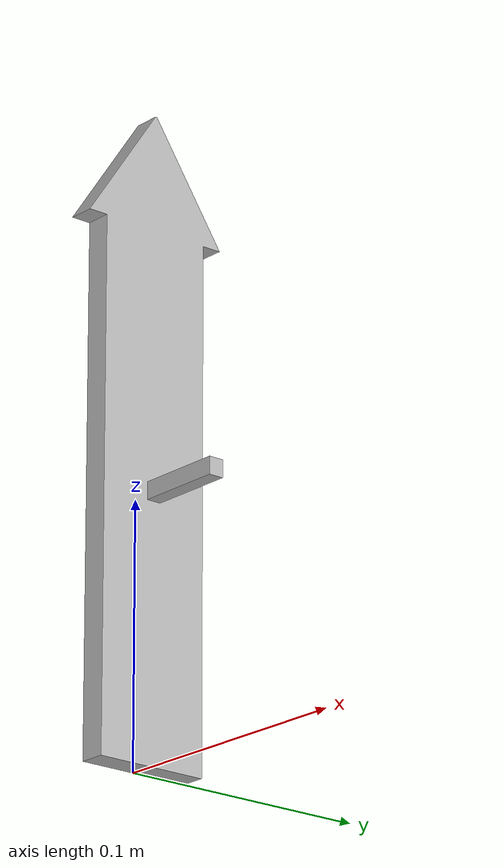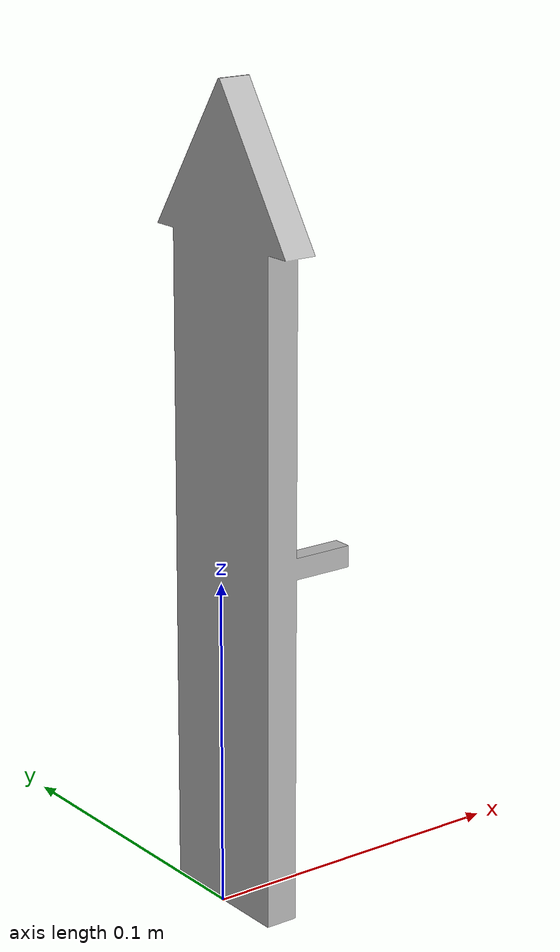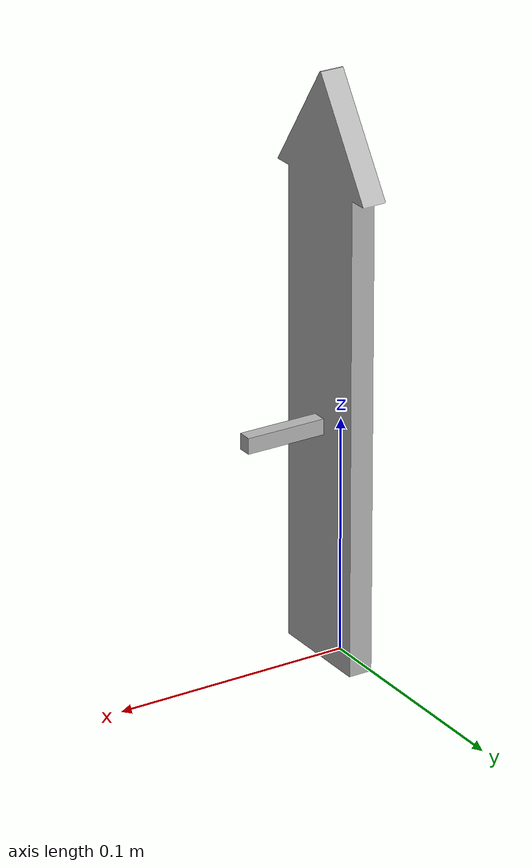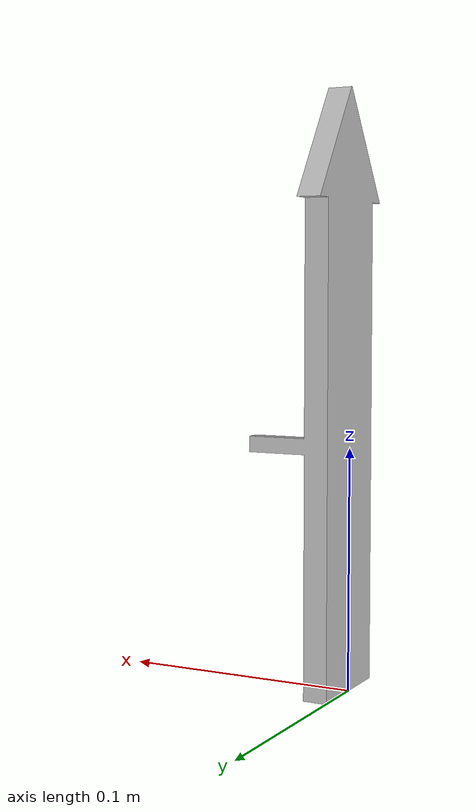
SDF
<?xml version="1.0" ?>
<sdf version="1.5">
  <model name="direction">
    <static>true</static>
    <link name="link">
      <visual name="visual">
        <geometry>
          <mesh>
            <uri>model://direction/meshes/direction.stl</uri>
            <scale>1 1 1</scale>
          </mesh>
        </geometry>
        <material>
        </material>
      </visual>
    </link>
  </model>
</sdf>
